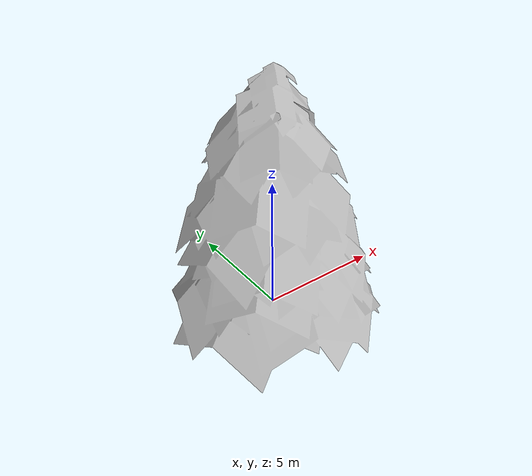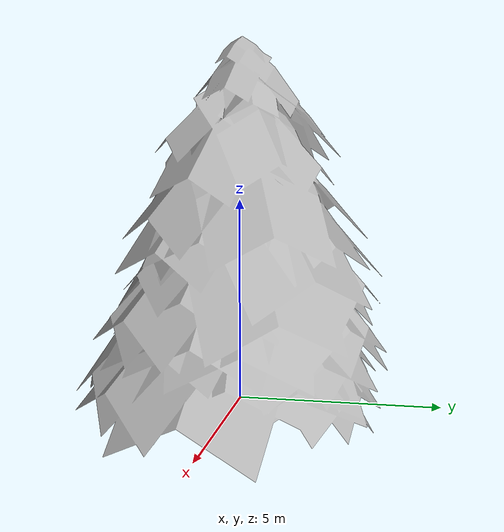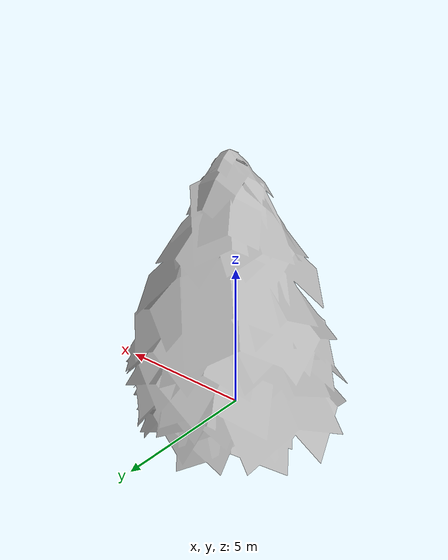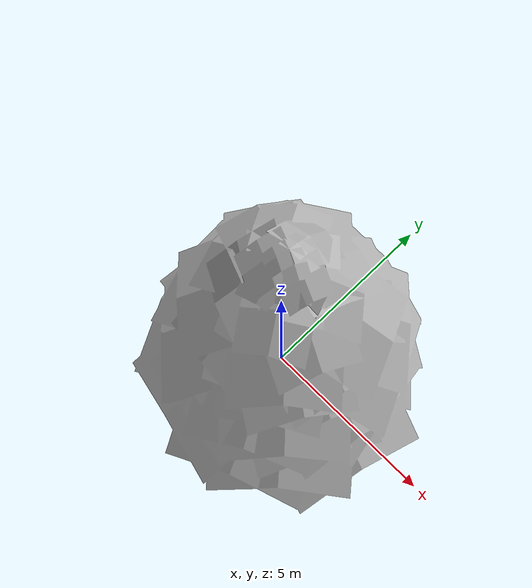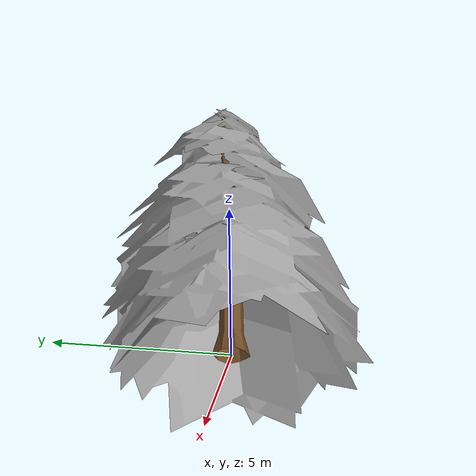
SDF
<?xml version="1.0" ?>
<sdf version="1.4">
  <model name="iai_conifer">
    <static>true</static>
    <link name="iai_conifer_trunk">
      <collision name="collision">
	<geometry>
            <mesh>
	      <uri>model://conifer/conifer_trunk.stl</uri>
	    </mesh>
          </geometry>
      </collision>
      <visual name="visual">
        <cast_shadows>false</cast_shadows>

	<geometry>
            <mesh>
	      <uri>model://conifer/conifer_trunk.dae</uri>
	    </mesh>
          </geometry>

        <material>
          <script>
            <uri>file://Media/materials/scripts/iai-rescue.material</uri>
	     <name>IAI/Trunk</name>
          </script>
        </material>
      </visual>
    </link>
    <link name="iai_conifer_branches">
      <collision name="collision">
	<geometry>
            <mesh>
	      <uri>model://conifer/conifer_branches.stl</uri>
	    </mesh>
          </geometry>
      </collision>
      <visual name="visual">
        <cast_shadows>false</cast_shadows>

	<geometry>
            <mesh>
	      <uri>model://conifer/conifer_branches.dae</uri>
	    </mesh>
          </geometry>

        <material>
          <script>
            <uri>file://Media/materials/scripts/iai-rescue.material</uri>
	     <name>IAI/ConiferBranches</name>
          </script>
        </material>
      </visual>
    </link>
    <joint name="j_tree" type="fixed">
      <parent>iai_conifer_trunk</parent>
      <child>iai_conifer_branches</child>

    </joint>
  </model>
</sdf>
